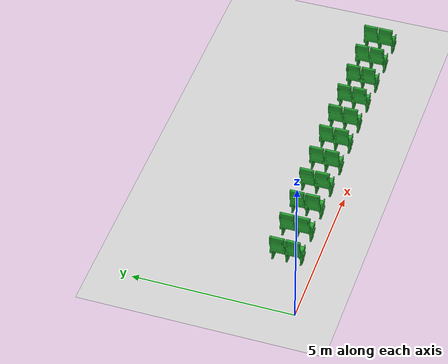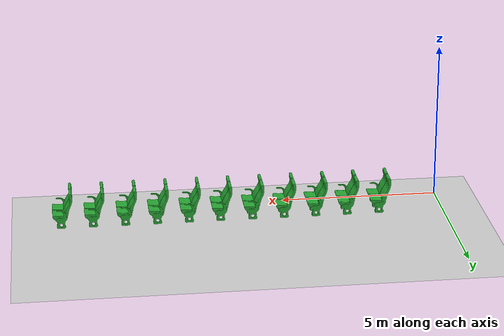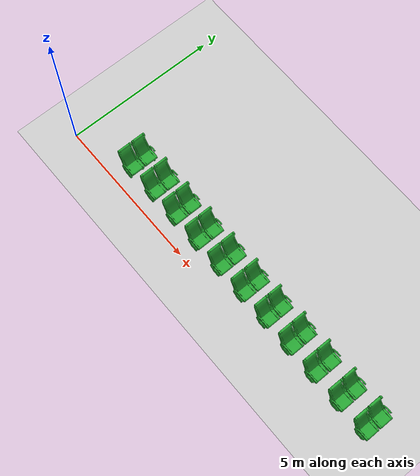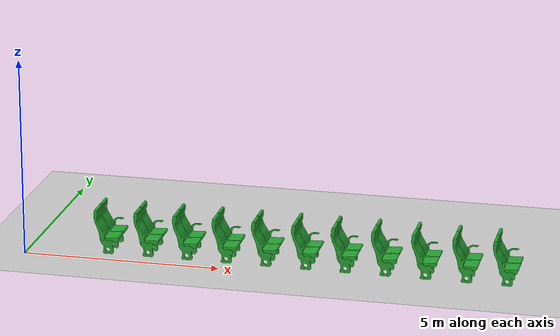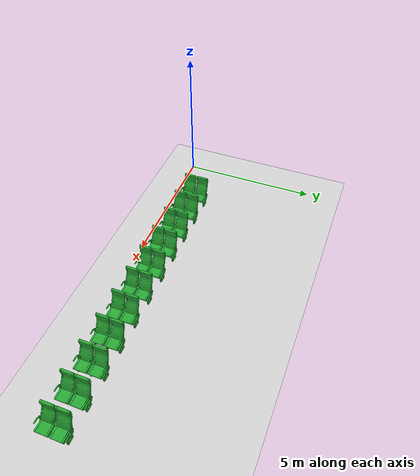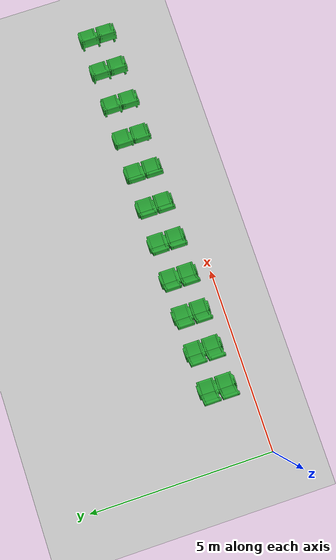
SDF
<sdf version="1.7">
 <world name="default">
  <model name="ground_plane">
   <static>1</static>
   <link name="link">
    <collision name="collision">
     <geometry><plane><normal>0 0 1</normal><size>100 100</size></plane></geometry>
     <surface><friction><ode><mu>100</mu><mu2>50</mu2></ode></friction></surface>
    </collision>
    <visual name="visual">
     <cast_shadows>0</cast_shadows>
     <geometry><plane><normal>0 0 1</normal><size>100 100</size></plane></geometry>
     <material>
      <script><uri>file://media/materials/scripts/gazebo.material</uri><name>Gazebo/Grey</name></script>
     </material>
    </visual>
   </link>
  </model>
  <model name="seat1_row_0">
   <model name="seat1">
    <link name="link_1">
     <inertial>
      <mass>0</mass>
      <inertia><ixx>0</ixx><ixy>0</ixy><ixz>0</ixz><iyy>0</iyy><iyz>0</iyz><izz>0</izz></inertia>
     </inertial>
     <gravity>0</gravity>
     <visual name="visual">
      <geometry>
       <mesh><uri>model://seat1_row/meshes/seat1.stl</uri><scale>0.001 0.001 0.001</scale></mesh>
      </geometry>
      <material>
       <lighting>1</lighting>
       <script><uri>file://media/materials/scripts/gazebo.material</uri><name>Gazebo/Green</name></script>
       <shader type="vertex"><normal_map>__default__</normal_map></shader>
       <ambient>0.3 0.3 0.3 1</ambient>
       <diffuse>0.7 0.7 0.7 1</diffuse>
       <specular>0.01 0.01 0.01 1</specular>
       <emissive>0 0 0 1</emissive>
      </material>
     </visual>
     <collision name="collision">
      <geometry>
       <mesh><uri>model://seat1_row/meshes/seat1.stl</uri><scale>0.001 0.001 0.001</scale></mesh>
      </geometry>
      <surface>
       <friction>
        <ode><mu>100000</mu><mu2>100000</mu2><fdir1>0 0 0</fdir1><slip1>0</slip1><slip2>0</slip2></ode>
        <torsional>
         <coefficient>1</coefficient>
         <patch_radius>0</patch_radius>
         <surface_radius>0</surface_radius>
         <use_patch_radius>1</use_patch_radius>
         <ode><slip>0</slip></ode>
        </torsional>
       </friction>
       <bounce><restitution_coefficient>0</restitution_coefficient><threshold>1e+06</threshold></bounce>
       <contact>
        <collide_without_contact>0</collide_without_contact>
        <collide_without_contact_bitmask>1</collide_without_contact_bitmask>
        <collide_bitmask>1</collide_bitmask>
        <ode>
         <soft_cfm>0</soft_cfm>
         <soft_erp>0.2</soft_erp>
         <kp>1e+13</kp>
         <kd>1</kd>
         <max_vel>0.01</max_vel>
         <min_depth>0</min_depth>
        </ode>
        <bullet>
         <split_impulse>1</split_impulse>
         <split_impulse_penetration_threshold>-0.01</split_impulse_penetration_threshold>
         <soft_cfm>0</soft_cfm>
         <soft_erp>0.2</soft_erp>
         <kp>1e+13</kp>
         <kd>1</kd>
        </bullet>
       </contact>
      </surface>
     </collision>
    </link>
    <static>0</static>
    <pose>-5.0343 -0.01706 0 0 -0 0</pose>
   </model>
   <model name="seat1_0">
    <link name="link_1">
     <inertial>
      <mass>0</mass>
      <inertia><ixx>0</ixx><ixy>0</ixy><ixz>0</ixz><iyy>0</iyy><iyz>0</iyz><izz>0</izz></inertia>
     </inertial>
     <gravity>0</gravity>
     <visual name="visual">
      <geometry>
       <mesh><uri>model://seat1_row/meshes/seat1.stl</uri><scale>0.001 0.001 0.001</scale></mesh>
      </geometry>
      <material>
       <lighting>1</lighting>
       <script><uri>file://media/materials/scripts/gazebo.material</uri><name>Gazebo/Green</name></script>
       <shader type="vertex"><normal_map>__default__</normal_map></shader>
       <ambient>0.3 0.3 0.3 1</ambient>
       <diffuse>0.7 0.7 0.7 1</diffuse>
       <specular>0.01 0.01 0.01 1</specular>
       <emissive>0 0 0 1</emissive>
      </material>
     </visual>
     <collision name="collision">
      <geometry>
       <mesh><uri>model://seat1_row/meshes/seat1.stl</uri><scale>0.001 0.001 0.001</scale></mesh>
      </geometry>
      <surface>
       <friction>
        <ode><mu>100000</mu><mu2>100000</mu2><fdir1>0 0 0</fdir1><slip1>0</slip1><slip2>0</slip2></ode>
        <torsional>
         <coefficient>1</coefficient>
         <patch_radius>0</patch_radius>
         <surface_radius>0</surface_radius>
         <use_patch_radius>1</use_patch_radius>
         <ode><slip>0</slip></ode>
        </torsional>
       </friction>
       <bounce><restitution_coefficient>0</restitution_coefficient><threshold>1e+06</threshold></bounce>
       <contact>
        <collide_without_contact>0</collide_without_contact>
        <collide_without_contact_bitmask>1</collide_without_contact_bitmask>
        <collide_bitmask>1</collide_bitmask>
        <ode>
         <soft_cfm>0</soft_cfm>
         <soft_erp>0.2</soft_erp>
         <kp>1e+13</kp>
         <kd>1</kd>
         <max_vel>0.01</max_vel>
         <min_depth>0</min_depth>
        </ode>
        <bullet>
         <split_impulse>1</split_impulse>
         <split_impulse_penetration_threshold>-0.01</split_impulse_penetration_threshold>
         <soft_cfm>0</soft_cfm>
         <soft_erp>0.2</soft_erp>
         <kp>1e+13</kp>
         <kd>1</kd>
        </bullet>
       </contact>
      </surface>
     </collision>
    </link>
    <static>0</static>
    <pose>-4.00584 -0.001062 0 0 -0 0</pose>
   </model>
   <model name="seat1_1">
    <link name="link_1">
     <inertial>
      <mass>0</mass>
      <inertia><ixx>0</ixx><ixy>0</ixy><ixz>0</ixz><iyy>0</iyy><iyz>0</iyz><izz>0</izz></inertia>
     </inertial>
     <gravity>0</gravity>
     <visual name="visual">
      <geometry>
       <mesh><uri>model://seat1_row/meshes/seat1.stl</uri><scale>0.001 0.001 0.001</scale></mesh>
      </geometry>
      <material>
       <lighting>1</lighting>
       <script><uri>file://media/materials/scripts/gazebo.material</uri><name>Gazebo/Green</name></script>
       <shader type="vertex"><normal_map>__default__</normal_map></shader>
       <ambient>0.3 0.3 0.3 1</ambient>
       <diffuse>0.7 0.7 0.7 1</diffuse>
       <specular>0.01 0.01 0.01 1</specular>
       <emissive>0 0 0 1</emissive>
      </material>
     </visual>
     <collision name="collision">
      <geometry>
       <mesh><uri>model://seat1_row/meshes/seat1.stl</uri><scale>0.001 0.001 0.001</scale></mesh>
      </geometry>
      <surface>
       <friction>
        <ode><mu>100000</mu><mu2>100000</mu2><fdir1>0 0 0</fdir1><slip1>0</slip1><slip2>0</slip2></ode>
        <torsional>
         <coefficient>1</coefficient>
         <patch_radius>0</patch_radius>
         <surface_radius>0</surface_radius>
         <use_patch_radius>1</use_patch_radius>
         <ode><slip>0</slip></ode>
        </torsional>
       </friction>
       <bounce><restitution_coefficient>0</restitution_coefficient><threshold>1e+06</threshold></bounce>
       <contact>
        <collide_without_contact>0</collide_without_contact>
        <collide_without_contact_bitmask>1</collide_without_contact_bitmask>
        <collide_bitmask>1</collide_bitmask>
        <ode>
         <soft_cfm>0</soft_cfm>
         <soft_erp>0.2</soft_erp>
         <kp>1e+13</kp>
         <kd>1</kd>
         <max_vel>0.01</max_vel>
         <min_depth>0</min_depth>
        </ode>
        <bullet>
         <split_impulse>1</split_impulse>
         <split_impulse_penetration_threshold>-0.01</split_impulse_penetration_threshold>
         <soft_cfm>0</soft_cfm>
         <soft_erp>0.2</soft_erp>
         <kp>1e+13</kp>
         <kd>1</kd>
        </bullet>
       </contact>
      </surface>
     </collision>
    </link>
    <static>0</static>
    <pose>-3.00666 0.000776 0 0 -0 0</pose>
   </model>
   <model name="seat1_2">
    <link name="link_1">
     <inertial>
      <mass>0</mass>
      <inertia><ixx>0</ixx><ixy>0</ixy><ixz>0</ixz><iyy>0</iyy><iyz>0</iyz><izz>0</izz></inertia>
     </inertial>
     <gravity>0</gravity>
     <visual name="visual">
      <geometry>
       <mesh><uri>model://seat1_row/meshes/seat1.stl</uri><scale>0.001 0.001 0.001</scale></mesh>
      </geometry>
      <material>
       <lighting>1</lighting>
       <script><uri>file://media/materials/scripts/gazebo.material</uri><name>Gazebo/Green</name></script>
       <shader type="vertex"><normal_map>__default__</normal_map></shader>
       <ambient>0.3 0.3 0.3 1</ambient>
       <diffuse>0.7 0.7 0.7 1</diffuse>
       <specular>0.01 0.01 0.01 1</specular>
       <emissive>0 0 0 1</emissive>
      </material>
     </visual>
     <collision name="collision">
      <geometry>
       <mesh><uri>model://seat1_row/meshes/seat1.stl</uri><scale>0.001 0.001 0.001</scale></mesh>
      </geometry>
      <surface>
       <friction>
        <ode><mu>100000</mu><mu2>100000</mu2><fdir1>0 0 0</fdir1><slip1>0</slip1><slip2>0</slip2></ode>
        <torsional>
         <coefficient>1</coefficient>
         <patch_radius>0</patch_radius>
         <surface_radius>0</surface_radius>
         <use_patch_radius>1</use_patch_radius>
         <ode><slip>0</slip></ode>
        </torsional>
       </friction>
       <bounce><restitution_coefficient>0</restitution_coefficient><threshold>1e+06</threshold></bounce>
       <contact>
        <collide_without_contact>0</collide_without_contact>
        <collide_without_contact_bitmask>1</collide_without_contact_bitmask>
        <collide_bitmask>1</collide_bitmask>
        <ode>
         <soft_cfm>0</soft_cfm>
         <soft_erp>0.2</soft_erp>
         <kp>1e+13</kp>
         <kd>1</kd>
         <max_vel>0.01</max_vel>
         <min_depth>0</min_depth>
        </ode>
        <bullet>
         <split_impulse>1</split_impulse>
         <split_impulse_penetration_threshold>-0.01</split_impulse_penetration_threshold>
         <soft_cfm>0</soft_cfm>
         <soft_erp>0.2</soft_erp>
         <kp>1e+13</kp>
         <kd>1</kd>
        </bullet>
       </contact>
      </surface>
     </collision>
    </link>
    <static>0</static>
    <pose>-1.99785 0.004244 0 0 -0 0</pose>
   </model>
   <model name="seat1_3">
    <link name="link_1">
     <inertial>
      <mass>0</mass>
      <inertia><ixx>0</ixx><ixy>0</ixy><ixz>0</ixz><iyy>0</iyy><iyz>0</iyz><izz>0</izz></inertia>
     </inertial>
     <gravity>0</gravity>
     <visual name="visual">
      <geometry>
       <mesh><uri>model://seat1_row/meshes/seat1.stl</uri><scale>0.001 0.001 0.001</scale></mesh>
      </geometry>
      <material>
       <lighting>1</lighting>
       <script><uri>file://media/materials/scripts/gazebo.material</uri><name>Gazebo/Green</name></script>
       <shader type="vertex"><normal_map>__default__</normal_map></shader>
       <ambient>0.3 0.3 0.3 1</ambient>
       <diffuse>0.7 0.7 0.7 1</diffuse>
       <specular>0.01 0.01 0.01 1</specular>
       <emissive>0 0 0 1</emissive>
      </material>
     </visual>
     <collision name="collision">
      <geometry>
       <mesh><uri>model://seat1_row/meshes/seat1.stl</uri><scale>0.001 0.001 0.001</scale></mesh>
      </geometry>
      <surface>
       <friction>
        <ode><mu>100000</mu><mu2>100000</mu2><fdir1>0 0 0</fdir1><slip1>0</slip1><slip2>0</slip2></ode>
        <torsional>
         <coefficient>1</coefficient>
         <patch_radius>0</patch_radius>
         <surface_radius>0</surface_radius>
         <use_patch_radius>1</use_patch_radius>
         <ode><slip>0</slip></ode>
        </torsional>
       </friction>
       <bounce><restitution_coefficient>0</restitution_coefficient><threshold>1e+06</threshold></bounce>
       <contact>
        <collide_without_contact>0</collide_without_contact>
        <collide_without_contact_bitmask>1</collide_without_contact_bitmask>
        <collide_bitmask>1</collide_bitmask>
        <ode>
         <soft_cfm>0</soft_cfm>
         <soft_erp>0.2</soft_erp>
         <kp>1e+13</kp>
         <kd>1</kd>
         <max_vel>0.01</max_vel>
         <min_depth>0</min_depth>
        </ode>
        <bullet>
         <split_impulse>1</split_impulse>
         <split_impulse_penetration_threshold>-0.01</split_impulse_penetration_threshold>
         <soft_cfm>0</soft_cfm>
         <soft_erp>0.2</soft_erp>
         <kp>1e+13</kp>
         <kd>1</kd>
        </bullet>
       </contact>
      </surface>
     </collision>
    </link>
    <static>0</static>
    <pose>-0.992785 0.003913 0 0 -0 0</pose>
   </model>
   <model name="seat1_4">
    <link name="link_1">
     <inertial>
      <mass>0</mass>
      <inertia><ixx>0</ixx><ixy>0</ixy><ixz>0</ixz><iyy>0</iyy><iyz>0</iyz><izz>0</izz></inertia>
     </inertial>
     <gravity>0</gravity>
     <visual name="visual">
      <geometry>
       <mesh><uri>model://seat1_row/meshes/seat1.stl</uri><scale>0.001 0.001 0.001</scale></mesh>
      </geometry>
      <material>
       <lighting>1</lighting>
       <script><uri>file://media/materials/scripts/gazebo.material</uri><name>Gazebo/Green</name></script>
       <shader type="vertex"><normal_map>__default__</normal_map></shader>
       <ambient>0.3 0.3 0.3 1</ambient>
       <diffuse>0.7 0.7 0.7 1</diffuse>
       <specular>0.01 0.01 0.01 1</specular>
       <emissive>0 0 0 1</emissive>
      </material>
     </visual>
     <collision name="collision">
      <geometry>
       <mesh><uri>model://seat1_row/meshes/seat1.stl</uri><scale>0.001 0.001 0.001</scale></mesh>
      </geometry>
      <surface>
       <friction>
        <ode><mu>100000</mu><mu2>100000</mu2><fdir1>0 0 0</fdir1><slip1>0</slip1><slip2>0</slip2></ode>
        <torsional>
         <coefficient>1</coefficient>
         <patch_radius>0</patch_radius>
         <surface_radius>0</surface_radius>
         <use_patch_radius>1</use_patch_radius>
         <ode><slip>0</slip></ode>
        </torsional>
       </friction>
       <bounce><restitution_coefficient>0</restitution_coefficient><threshold>1e+06</threshold></bounce>
       <contact>
        <collide_without_contact>0</collide_without_contact>
        <collide_without_contact_bitmask>1</collide_without_contact_bitmask>
        <collide_bitmask>1</collide_bitmask>
        <ode>
         <soft_cfm>0</soft_cfm>
         <soft_erp>0.2</soft_erp>
         <kp>1e+13</kp>
         <kd>1</kd>
         <max_vel>0.01</max_vel>
         <min_depth>0</min_depth>
        </ode>
        <bullet>
         <split_impulse>1</split_impulse>
         <split_impulse_penetration_threshold>-0.01</split_impulse_penetration_threshold>
         <soft_cfm>0</soft_cfm>
         <soft_erp>0.2</soft_erp>
         <kp>1e+13</kp>
         <kd>1</kd>
        </bullet>
       </contact>
      </surface>
     </collision>
    </link>
    <static>0</static>
    <pose>0.016228 0.001473 0 0 -0 0</pose>
   </model>
   <model name="seat1_5">
    <link name="link_1">
     <inertial>
      <mass>0</mass>
      <inertia><ixx>0</ixx><ixy>0</ixy><ixz>0</ixz><iyy>0</iyy><iyz>0</iyz><izz>0</izz></inertia>
     </inertial>
     <gravity>0</gravity>
     <visual name="visual">
      <geometry>
       <mesh><uri>model://seat1_row/meshes/seat1.stl</uri><scale>0.001 0.001 0.001</scale></mesh>
      </geometry>
      <material>
       <lighting>1</lighting>
       <script><uri>file://media/materials/scripts/gazebo.material</uri><name>Gazebo/Green</name></script>
       <shader type="vertex"><normal_map>__default__</normal_map></shader>
       <ambient>0.3 0.3 0.3 1</ambient>
       <diffuse>0.7 0.7 0.7 1</diffuse>
       <specular>0.01 0.01 0.01 1</specular>
       <emissive>0 0 0 1</emissive>
      </material>
     </visual>
     <collision name="collision">
      <geometry>
       <mesh><uri>model://seat1_row/meshes/seat1.stl</uri><scale>0.001 0.001 0.001</scale></mesh>
      </geometry>
      <surface>
       <friction>
        <ode><mu>100000</mu><mu2>100000</mu2><fdir1>0 0 0</fdir1><slip1>0</slip1><slip2>0</slip2></ode>
        <torsional>
         <coefficient>1</coefficient>
         <patch_radius>0</patch_radius>
         <surface_radius>0</surface_radius>
         <use_patch_radius>1</use_patch_radius>
         <ode><slip>0</slip></ode>
        </torsional>
       </friction>
       <bounce><restitution_coefficient>0</restitution_coefficient><threshold>1e+06</threshold></bounce>
       <contact>
        <collide_without_contact>0</collide_without_contact>
        <collide_without_contact_bitmask>1</collide_without_contact_bitmask>
        <collide_bitmask>1</collide_bitmask>
        <ode>
         <soft_cfm>0</soft_cfm>
         <soft_erp>0.2</soft_erp>
         <kp>1e+13</kp>
         <kd>1</kd>
         <max_vel>0.01</max_vel>
         <min_depth>0</min_depth>
        </ode>
        <bullet>
         <split_impulse>1</split_impulse>
         <split_impulse_penetration_threshold>-0.01</split_impulse_penetration_threshold>
         <soft_cfm>0</soft_cfm>
         <soft_erp>0.2</soft_erp>
         <kp>1e+13</kp>
         <kd>1</kd>
        </bullet>
       </contact>
      </surface>
     </collision>
    </link>
    <static>0</static>
    <pose>1.00599 0.000701 0 0 -0 0</pose>
   </model>
   <model name="seat1_6">
    <link name="link_1">
     <inertial>
      <mass>0</mass>
      <inertia><ixx>0</ixx><ixy>0</ixy><ixz>0</ixz><iyy>0</iyy><iyz>0</iyz><izz>0</izz></inertia>
     </inertial>
     <gravity>0</gravity>
     <visual name="visual">
      <geometry>
       <mesh><uri>model://seat1_row/meshes/seat1.stl</uri><scale>0.001 0.001 0.001</scale></mesh>
      </geometry>
      <material>
       <lighting>1</lighting>
       <script><uri>file://media/materials/scripts/gazebo.material</uri><name>Gazebo/Green</name></script>
       <shader type="vertex"><normal_map>__default__</normal_map></shader>
       <ambient>0.3 0.3 0.3 1</ambient>
       <diffuse>0.7 0.7 0.7 1</diffuse>
       <specular>0.01 0.01 0.01 1</specular>
       <emissive>0 0 0 1</emissive>
      </material>
     </visual>
     <collision name="collision">
      <geometry>
       <mesh><uri>model://seat1_row/meshes/seat1.stl</uri><scale>0.001 0.001 0.001</scale></mesh>
      </geometry>
      <surface>
       <friction>
        <ode><mu>100000</mu><mu2>100000</mu2><fdir1>0 0 0</fdir1><slip1>0</slip1><slip2>0</slip2></ode>
        <torsional>
         <coefficient>1</coefficient>
         <patch_radius>0</patch_radius>
         <surface_radius>0</surface_radius>
         <use_patch_radius>1</use_patch_radius>
         <ode><slip>0</slip></ode>
        </torsional>
       </friction>
       <bounce><restitution_coefficient>0</restitution_coefficient><threshold>1e+06</threshold></bounce>
       <contact>
        <collide_without_contact>0</collide_without_contact>
        <collide_without_contact_bitmask>1</collide_without_contact_bitmask>
        <collide_bitmask>1</collide_bitmask>
        <ode>
         <soft_cfm>0</soft_cfm>
         <soft_erp>0.2</soft_erp>
         <kp>1e+13</kp>
         <kd>1</kd>
         <max_vel>0.01</max_vel>
         <min_depth>0</min_depth>
        </ode>
        <bullet>
         <split_impulse>1</split_impulse>
         <split_impulse_penetration_threshold>-0.01</split_impulse_penetration_threshold>
         <soft_cfm>0</soft_cfm>
         <soft_erp>0.2</soft_erp>
         <kp>1e+13</kp>
         <kd>1</kd>
        </bullet>
       </contact>
      </surface>
     </collision>
    </link>
    <static>0</static>
    <pose>2.00535 0.002232 0 0 -0 0</pose>
   </model>
   <model name="seat1_7">
    <link name="link_1">
     <inertial>
      <mass>0</mass>
      <inertia><ixx>0</ixx><ixy>0</ixy><ixz>0</ixz><iyy>0</iyy><iyz>0</iyz><izz>0</izz></inertia>
     </inertial>
     <gravity>0</gravity>
     <visual name="visual">
      <geometry>
       <mesh><uri>model://seat1_row/meshes/seat1.stl</uri><scale>0.001 0.001 0.001</scale></mesh>
      </geometry>
      <material>
       <lighting>1</lighting>
       <script><uri>file://media/materials/scripts/gazebo.material</uri><name>Gazebo/Green</name></script>
       <shader type="vertex"><normal_map>__default__</normal_map></shader>
       <ambient>0.3 0.3 0.3 1</ambient>
       <diffuse>0.7 0.7 0.7 1</diffuse>
       <specular>0.01 0.01 0.01 1</specular>
       <emissive>0 0 0 1</emissive>
      </material>
     </visual>
     <collision name="collision">
      <geometry>
       <mesh><uri>model://seat1_row/meshes/seat1.stl</uri><scale>0.001 0.001 0.001</scale></mesh>
      </geometry>
      <surface>
       <friction>
        <ode><mu>100000</mu><mu2>100000</mu2><fdir1>0 0 0</fdir1><slip1>0</slip1><slip2>0</slip2></ode>
        <torsional>
         <coefficient>1</coefficient>
         <patch_radius>0</patch_radius>
         <surface_radius>0</surface_radius>
         <use_patch_radius>1</use_patch_radius>
         <ode><slip>0</slip></ode>
        </torsional>
       </friction>
       <bounce><restitution_coefficient>0</restitution_coefficient><threshold>1e+06</threshold></bounce>
       <contact>
        <collide_without_contact>0</collide_without_contact>
        <collide_without_contact_bitmask>1</collide_without_contact_bitmask>
        <collide_bitmask>1</collide_bitmask>
        <ode>
         <soft_cfm>0</soft_cfm>
         <soft_erp>0.2</soft_erp>
         <kp>1e+13</kp>
         <kd>1</kd>
         <max_vel>0.01</max_vel>
         <min_depth>0</min_depth>
        </ode>
        <bullet>
         <split_impulse>1</split_impulse>
         <split_impulse_penetration_threshold>-0.01</split_impulse_penetration_threshold>
         <soft_cfm>0</soft_cfm>
         <soft_erp>0.2</soft_erp>
         <kp>1e+13</kp>
         <kd>1</kd>
        </bullet>
       </contact>
      </surface>
     </collision>
    </link>
    <static>0</static>
    <pose>3.00014 0.001951 0 0 -0 0</pose>
   </model>
   <model name="seat1_8">
    <link name="link_1">
     <inertial>
      <mass>0</mass>
      <inertia><ixx>0</ixx><ixy>0</ixy><ixz>0</ixz><iyy>0</iyy><iyz>0</iyz><izz>0</izz></inertia>
     </inertial>
     <gravity>0</gravity>
     <visual name="visual">
      <geometry>
       <mesh><uri>model://seat1_row/meshes/seat1.stl</uri><scale>0.001 0.001 0.001</scale></mesh>
      </geometry>
      <material>
       <lighting>1</lighting>
       <script><uri>file://media/materials/scripts/gazebo.material</uri><name>Gazebo/Green</name></script>
       <shader type="vertex"><normal_map>__default__</normal_map></shader>
       <ambient>0.3 0.3 0.3 1</ambient>
       <diffuse>0.7 0.7 0.7 1</diffuse>
       <specular>0.01 0.01 0.01 1</specular>
       <emissive>0 0 0 1</emissive>
      </material>
     </visual>
     <collision name="collision">
      <geometry>
       <mesh><uri>model://seat1_row/meshes/seat1.stl</uri><scale>0.001 0.001 0.001</scale></mesh>
      </geometry>
      <surface>
       <friction>
        <ode><mu>100000</mu><mu2>100000</mu2><fdir1>0 0 0</fdir1><slip1>0</slip1><slip2>0</slip2></ode>
        <torsional>
         <coefficient>1</coefficient>
         <patch_radius>0</patch_radius>
         <surface_radius>0</surface_radius>
         <use_patch_radius>1</use_patch_radius>
         <ode><slip>0</slip></ode>
        </torsional>
       </friction>
       <bounce><restitution_coefficient>0</restitution_coefficient><threshold>1e+06</threshold></bounce>
       <contact>
        <collide_without_contact>0</collide_without_contact>
        <collide_without_contact_bitmask>1</collide_without_contact_bitmask>
        <collide_bitmask>1</collide_bitmask>
        <ode>
         <soft_cfm>0</soft_cfm>
         <soft_erp>0.2</soft_erp>
         <kp>1e+13</kp>
         <kd>1</kd>
         <max_vel>0.01</max_vel>
         <min_depth>0</min_depth>
        </ode>
        <bullet>
         <split_impulse>1</split_impulse>
         <split_impulse_penetration_threshold>-0.01</split_impulse_penetration_threshold>
         <soft_cfm>0</soft_cfm>
         <soft_erp>0.2</soft_erp>
         <kp>1e+13</kp>
         <kd>1</kd>
        </bullet>
       </contact>
      </surface>
     </collision>
    </link>
    <static>0</static>
    <pose>4.00893 0.002828 0 0 -0 0</pose>
   </model>
   <model name="seat1_9">
    <link name="link_1">
     <inertial>
      <mass>0</mass>
      <inertia><ixx>0</ixx><ixy>0</ixy><ixz>0</ixz><iyy>0</iyy><iyz>0</iyz><izz>0</izz></inertia>
     </inertial>
     <gravity>0</gravity>
     <visual name="visual">
      <geometry>
       <mesh><uri>model://seat1_row/meshes/seat1.stl</uri><scale>0.001 0.001 0.001</scale></mesh>
      </geometry>
      <material>
       <lighting>1</lighting>
       <script><uri>file://media/materials/scripts/gazebo.material</uri><name>Gazebo/Green</name></script>
       <shader type="vertex"><normal_map>__default__</normal_map></shader>
       <ambient>0.3 0.3 0.3 1</ambient>
       <diffuse>0.7 0.7 0.7 1</diffuse>
       <specular>0.01 0.01 0.01 1</specular>
       <emissive>0 0 0 1</emissive>
      </material>
     </visual>
     <collision name="collision">
      <geometry>
       <mesh><uri>model://seat1_row/meshes/seat1.stl</uri><scale>0.001 0.001 0.001</scale></mesh>
      </geometry>
      <surface>
       <friction>
        <ode><mu>100000</mu><mu2>100000</mu2><fdir1>0 0 0</fdir1><slip1>0</slip1><slip2>0</slip2></ode>
        <torsional>
         <coefficient>1</coefficient>
         <patch_radius>0</patch_radius>
         <surface_radius>0</surface_radius>
         <use_patch_radius>1</use_patch_radius>
         <ode><slip>0</slip></ode>
        </torsional>
       </friction>
       <bounce><restitution_coefficient>0</restitution_coefficient><threshold>1e+06</threshold></bounce>
       <contact>
        <collide_without_contact>0</collide_without_contact>
        <collide_without_contact_bitmask>1</collide_without_contact_bitmask>
        <collide_bitmask>1</collide_bitmask>
        <ode>
         <soft_cfm>0</soft_cfm>
         <soft_erp>0.2</soft_erp>
         <kp>1e+13</kp>
         <kd>1</kd>
         <max_vel>0.01</max_vel>
         <min_depth>0</min_depth>
        </ode>
        <bullet>
         <split_impulse>1</split_impulse>
         <split_impulse_penetration_threshold>-0.01</split_impulse_penetration_threshold>
         <soft_cfm>0</soft_cfm>
         <soft_erp>0.2</soft_erp>
         <kp>1e+13</kp>
         <kd>1</kd>
        </bullet>
       </contact>
      </surface>
     </collision>
    </link>
    <static>0</static>
    <pose>5.0008 5e-06 0 0 -0 0</pose>
   </model>
   <static>0</static>
   <pose>6.70188 0.385799 0 0 -0 0</pose>
  </model>
 </world>
</sdf>
